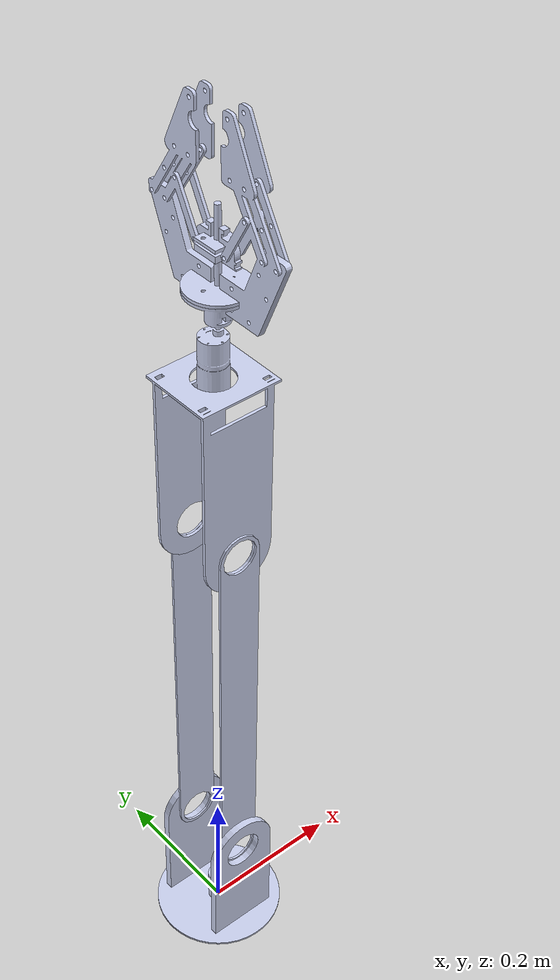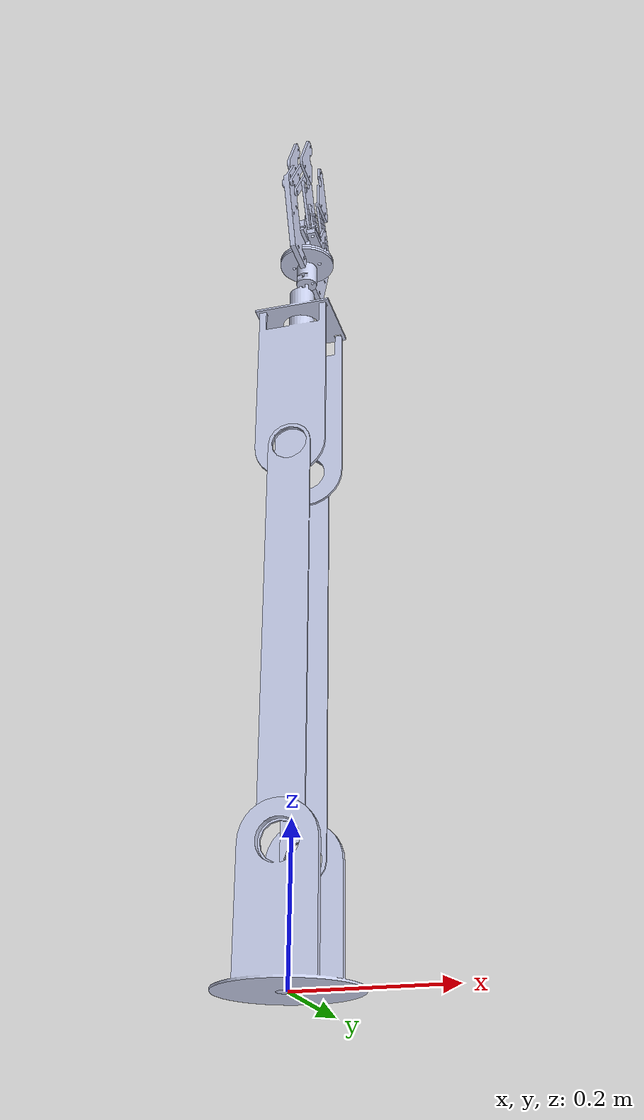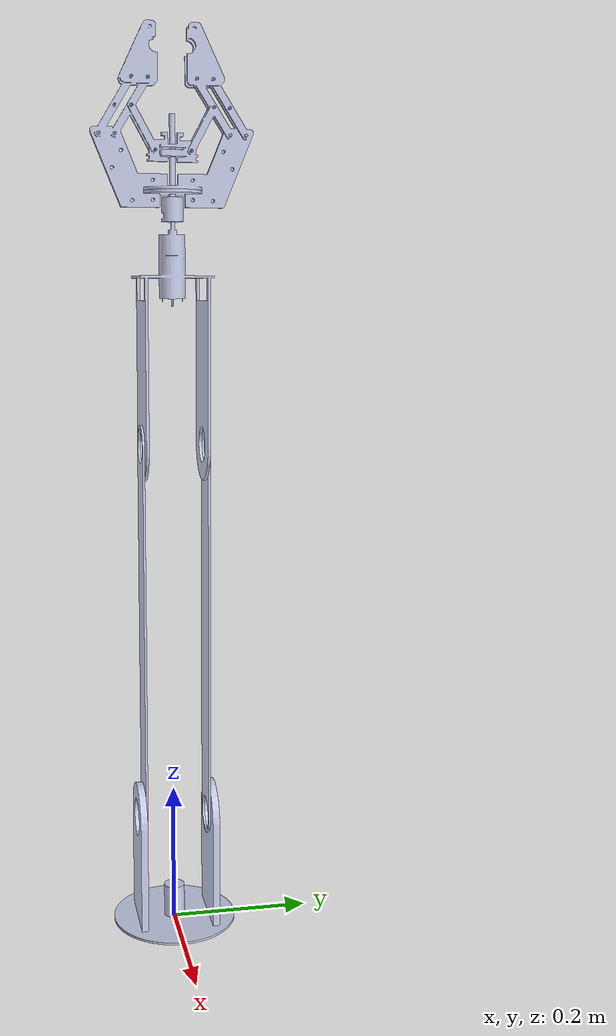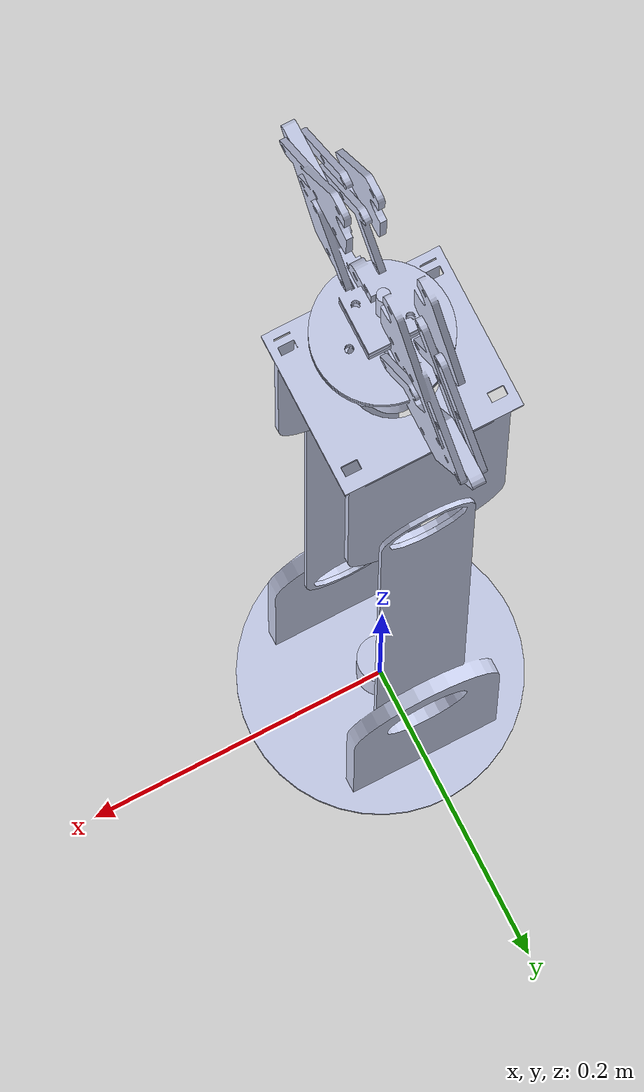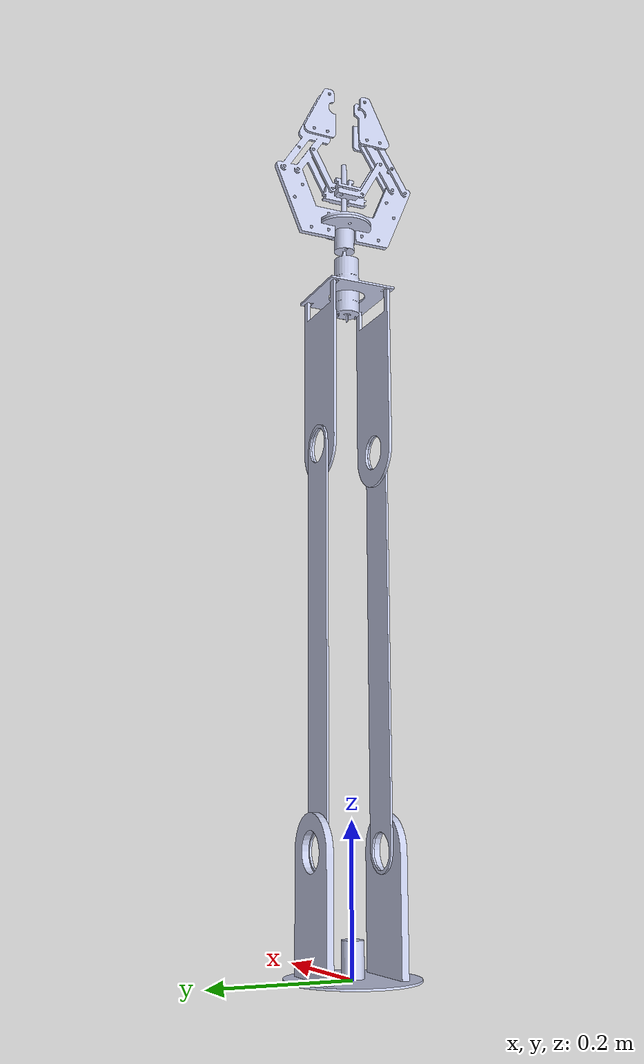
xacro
<?xml version="1.0"?>
<robot xmlns:xacro="http://www.ros.org/wiki/xacro" name="rover_arm_moveit">
    <xacro:arg name="initial_positions_file" default="initial_positions.yaml" />

    <!-- Import rover_arm_moveit urdf file -->
    <xacro:include filename="$(find rover_arm_moveit)/urdf/rover_arm_moveit.urdf" />

    <!-- Import control_xacro -->
    <xacro:include filename="rover_arm_moveit.ros2_control.xacro" />

    <xacro:rover_arm_moveit_ros2_control name="FakeSystem" initial_positions_file="$(arg initial_positions_file)"/>

</robot>

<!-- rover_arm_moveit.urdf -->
<robot
  name="rover_arm_moveit">
  <link
    name="base_link">
    <inertial>
      <origin
        xyz="-2.7756E-17 0 0.025"
        rpy="0 0 0" />
      <mass
        value="0.035343" />
      <inertia
        ixx="9.3511E-06"
        ixy="0"
        ixz="-2.5612E-38"
        iyy="9.3511E-06"
        iyz="1.1715E-37"
        izz="3.9761E-06" />
    </inertial>
    <visual>
      <origin
        xyz="0 0 0"
        rpy="0 0 0" />
      <geometry>
        <mesh
          filename="package://rover_arm_moveit/meshes/base_link.STL" />
      </geometry>
      <material
        name="">
        <color
          rgba="0.79216 0.81961 0.93333 1" />
      </material>
    </visual>
    <collision>
      <origin
        xyz="0 0 0"
        rpy="0 0 0" />
      <geometry>
        <mesh
          filename="package://rover_arm_moveit/meshes/base_link.STL" />
      </geometry>
    </collision>
  </link>
  <link
    name="link1">
    <inertial>
      <origin
        xyz="-3.747E-15 0.0022773 0.077122"
        rpy="0 0 0" />
      <mass
        value="0.41924" />
      <inertia
        ixx="0.0012798"
        ixy="1.0757E-18"
        ixz="9.3599E-19"
        iyy="0.0015952"
        iyz="3.9689E-19"
        izz="0.00059701" />
    </inertial>
    <visual>
      <origin
        xyz="0 0 0"
        rpy="0 0 0" />
      <geometry>
        <mesh
          filename="package://rover_arm_moveit/meshes/link1.STL" />
      </geometry>
      <material
        name="">
        <color
          rgba="0.79216 0.81961 0.93333 1" />
      </material>
    </visual>
    <collision>
      <origin
        xyz="0 0 0"
        rpy="0 0 0" />
      <geometry>
        <mesh
          filename="package://rover_arm_moveit/meshes/link1.STL" />
      </geometry>
    </collision>
  </link>
  <joint
    name="link1_joint"
    type="revolute">
    <origin
      xyz="0 -0.00021988 0"
      rpy="0 0 0" />
    <parent
      link="base_link" />
    <child
      link="link1" />
    <axis
      xyz="0 0 1" />
    <limit
      lower="-3.2"
      upper="3.2"
      effort="10.5"
      velocity="2.5" />
  </joint>
  <link
    name="link2">
    <inertial>
      <origin
        xyz="-2.8588E-15 -0.046 0.275"
        rpy="0 0 0" />
      <mass
        value="0.1914" />
      <inertia
        ixx="0.0046114"
        ixy="2.0737E-19"
        ixz="2.9287E-20"
        iyy="0.0046708"
        iyz="-3.3087E-22"
        izz="5.9679E-05" />
    </inertial>
    <visual>
      <origin
        xyz="0 0 0"
        rpy="0 0 0" />
      <geometry>
        <mesh
          filename="package://rover_arm_moveit/meshes/link2.STL" />
      </geometry>
      <material
        name="">
        <color
          rgba="0.79216 0.81961 0.93333 1" />
      </material>
    </visual>
    <collision>
      <origin
        xyz="0 0 0"
        rpy="0 0 0" />
      <geometry>
        <mesh
          filename="package://rover_arm_moveit/meshes/link2.STL" />
      </geometry>
    </collision>
  </link>
  <joint
    name="link2_joint"
    type="revolute">
    <origin
      xyz="0 0.04872 0.16"
      rpy="0 0 0" />
    <parent
      link="link1" />
    <child
      link="link2" />
    <axis
      xyz="0 -1 0" />
    <limit
      lower="-3.2"
      upper="3.2"
      effort="10.5"
      velocity="2.5" />
  </joint>
  <link
    name="link3">
    <inertial>
      <origin
        xyz="0.000814999246457893 -0.042709811887764 0.171512812855186"
        rpy="0 0 0" />
      <mass
        value="0.334746404914452" />
      <inertia
        ixx="0.00101227160012089"
        ixy="-1.0571975318945E-08"
        ixz="-5.29394672439346E-07"
        iyy="0.0011805187783924"
        iyz="-1.54971874790944E-12"
        izz="0.000248673620348846" />
    </inertial>
    <visual>
      <origin
        xyz="0 0 0"
        rpy="0 0 0" />
      <geometry>
        <mesh
          filename="package://rover_arm_moveit/meshes/link3.STL" />
      </geometry>
      <material
        name="">
        <color
          rgba="0.792156862745098 0.819607843137255 0.933333333333333 1" />
      </material>
    </visual>
    <collision>
      <origin
        xyz="0 0 0"
        rpy="0 0 0" />
      <geometry>
        <mesh
          filename="package://rover_arm_moveit/meshes/link3.STL" />
      </geometry>
    </collision>
  </link>
  <joint
    name="link3_joint"
    type="revolute">
    <origin
      xyz="0 -0.0035 0.55"
      rpy="0 0 0" />
    <parent
      link="link2" />
    <child
      link="link3" />
    <axis
      xyz="0 1 0" />
    <limit
      lower="-3.2"
      upper="3.2"
      effort="10.5"
      velocity="2.5" />
  </joint>
  <link
    name="link4">
    <inertial>
      <origin
        xyz="9.7368E-08 -0.00021194 0.064976"
        rpy="0 0 0" />
      <mass
        value="0.20212" />
      <inertia
        ixx="0.0001735"
        ixy="-5.5684E-08"
        ixz="1.5788E-19"
        iyy="0.0001153"
        iyz="1.0151E-07"
        izz="7.75E-05" />
    </inertial>
    <visual>
      <origin
        xyz="0 0 0"
        rpy="0 0 0" />
      <geometry>
        <mesh
          filename="package://rover_arm_moveit/meshes/link4.STL" />
      </geometry>
      <material
        name="">
        <color
          rgba="0.79216 0.81961 0.93333 1" />
      </material>
    </visual>
    <collision>
      <origin
        xyz="0 0 0"
        rpy="0 0 0" />
      <geometry>
        <mesh
          filename="package://rover_arm_moveit/meshes/link4.STL" />
      </geometry>
    </collision>
  </link>
  <joint
    name="link4_joint"
    type="revolute">
    <origin
      xyz="0.007 -0.043 0.3523"
      rpy="0 0 0" />
    <parent
      link="link3" />
    <child
      link="link4" />
    <axis
      xyz="0 0 1" />
    <limit
      lower="-3.2"
      upper="3.2"
      effort="10.5"
      velocity="2.5" />
  </joint>
  <link name="ee_link">
    <inertial>
      <origin xyz="-5.2708E-14 1.4855E-13 -0.067388" rpy="0 0 0" />
      <mass value="0.0068368" />
      <inertia ixx="1.007E-05" ixy="-4.9293E-23" ixz="-2.6959E-20" iyy="1.007E-05" iyz="-1.8013E-20" izz="6.7149E-08" />
    </inertial>
    <visual>
      <origin xyz="0 0 0" rpy="0 0 0" />
      <geometry>
        <mesh filename="package://rover_arm_moveit/meshes/ee_link.STL" />
      </geometry>
      <material name=""><color rgba="0.79216 0.81961 0.93333 1" /></material>
    </visual>
    <collision>
      <origin xyz="0 0 0" rpy="0 0 0" />
      <geometry>
        <mesh filename="package://rover_arm_moveit/meshes/ee_link.STL" />
      </geometry>
    </collision>
  </link>

  <joint name="ee_joint" type="fixed">
    <origin xyz="0 0 0.0965" rpy="0 0 0" />
    <parent link="link4" />
    <child link="ee_link" />
    <axis xyz="0 0 0" />
    <limit lower="0" upper="0" effort="10" velocity="0" />
  </joint>

  <!-- Rotational Joints for End Effector -->

  <link name="ee_rotation_x" />
  <joint name="ee_rotation_joint_x" type="revolute">
    <origin xyz="0 0 0" rpy="0 0 0" />
    <parent link="ee_link" />
    <child link="ee_rotation_x" />
    <axis xyz="1 0 0" />
    <limit lower="-3.14159" upper="3.14159" effort="5" velocity="1" />
  </joint>

  <link name="ee_rotation_y" />
  <joint name="ee_rotation_joint_y" type="revolute">
    <origin xyz="0 0 0" rpy="0 0 0" />
    <parent link="ee_rotation_x" />
    <child link="ee_rotation_y" />
    <axis xyz="0 1 0" />
    <limit lower="-3.14159" upper="3.14159" effort="5" velocity="1" />
  </joint>

  <link name="ee_rotation_z" />
  <joint name="ee_rotation_joint_z" type="revolute">
    <origin xyz="0 0 0" rpy="0 0 0" />
    <parent link="ee_rotation_y" />
    <child link="ee_rotation_z" />
    <axis xyz="0 0 1" />
    <limit lower="-3.14159" upper="3.14159" effort="5" velocity="1" />
  </joint>

  <!-- Final End Effector Link -->

  <link name="robot_ee" />
  <joint name="robot_ee_joint" type="fixed">
    <origin xyz="0 0 0" rpy="0 0 0" />
    <parent link="ee_rotation_z" />
    <child link="robot_ee" />
    <axis xyz="0 0 0" />
    <limit lower="0" upper="0" effort="0" velocity="0" />
  </joint>
</robot>
